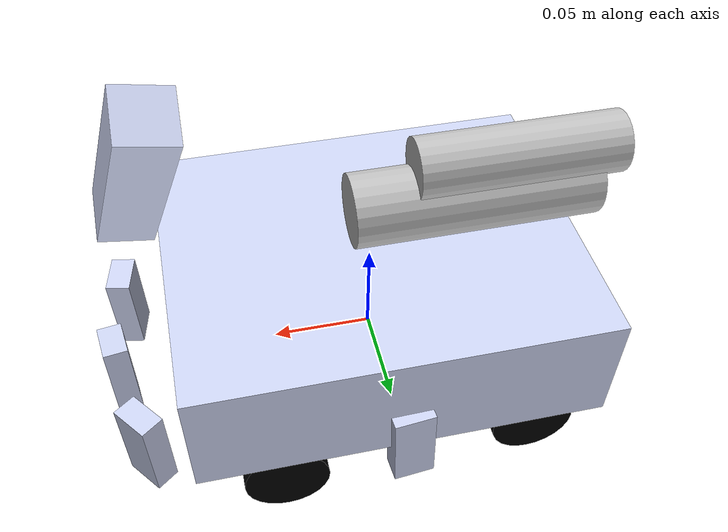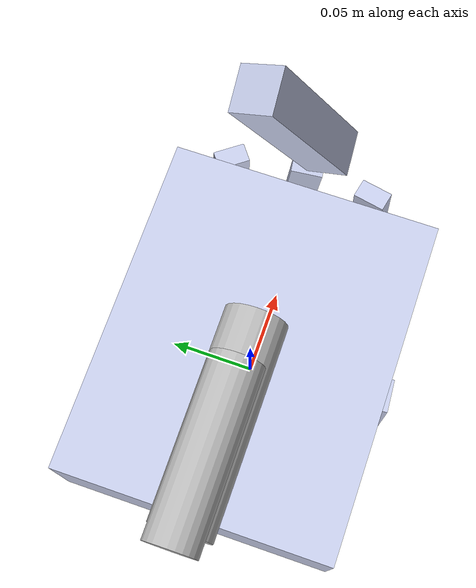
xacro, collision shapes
<?xml version="1.0" encoding="utf-8"?>
<robot name="assembly_of_robot" xmlns:xacro="http://www.ros.org/wiki/xacro">
  <!-- Controllers config path; launch files pass an absolute path override -->
  <xacro:arg name="controllers_yaml" default="$(find simulation_pkg)/config/controllers.yaml"/>

  <!-- ═══════════════════════════════════════════════════════════════════
       MATERIALS
  ══════════════════════════════════════════════════════════════════════ -->
  <material name="light_blue">
    <color rgba="0.792156862745098 0.819607843137255 0.933333333333333 1"/>
  </material>
  <material name="silver">
    <color rgba="0.749019607843137 0.749019607843137 0.749019607843137 1"/>
  </material>
  <material name="gripper_color">
    <color rgba="0.741176470588235 0.733333333333333 0.725490196078431 1"/>
  </material>
  <material name="dark_grey">
    <color rgba="0.2 0.2 0.2 1"/>
  </material>
  <!-- invisible material for wheel links -->
  <material name="invisible">
    <color rgba="0 0 0 0"/>
  </material>

  <!-- ═══════════════════════════════════════════════════════════════════
       BASE
  ══════════════════════════════════════════════════════════════════════ -->

  <link name="base_footprint"/>

  <joint name="base_joint" type="fixed">
    <origin xyz="0 0 0" rpy="0 0 0"/>
    <parent link="base_footprint"/>
    <child  link="base_link"/>
  </joint>

  <link name="base_link">
    <visual>
      <origin xyz="0 0 0" rpy="0 0 0"/>
      <geometry>
        <mesh filename="package://assembly_of_robot/meshes/base_link.STL"/>
      </geometry>
      <material name="light_blue"/>
    </visual>
    <!-- PRIMITIVE collision – avoids Gazebo mesh-load crash -->
    <collision>
      <origin xyz="0 0 0.03" rpy="0 0 0"/>
      <geometry>
        <box size="0.20 0.16 0.06"/>
      </geometry>
    </collision>
    <inertial>
      <origin xyz="0 0 0.03" rpy="0 0 0"/>
      <mass value="0.8"/>
      <inertia ixx="0.002133" ixy="0" ixz="0"
                               iyy="0.003200" iyz="0"
                                              izz="0.004267"/>
    </inertial>
  </link>

  <gazebo reference="base_link">
    <material>Gazebo/Blue</material>
    <mu1>0.5</mu1>
    <mu2>0.5</mu2>
    <self_collide>false</self_collide>
    <maxContacts>1</maxContacts>
  </gazebo>

  <!-- wheel_fl (front-left) -->
  <link name="wheel_fl_link">
    <visual>
      <origin xyz="0 0 0" rpy="0 0 0"/>
      <geometry><sphere radius="0.001"/></geometry>
      <material name="invisible"/>
    </visual>
    <collision>
      <origin xyz="0 0 0" rpy="1.5708 0 0"/>
      <geometry><cylinder length="0.025" radius="0.021"/></geometry>
    </collision>
    <inertial>
      <origin xyz="0 0 0" rpy="0 0 0"/>
      <mass value="0.05"/>
      <inertia ixx="6.25e-06" ixy="0" ixz="0"
                               iyy="6.25e-06" iyz="0"
                                               izz="1.10e-05"/>
    </inertial>
  </link>

  <joint name="wheel_fl_joint" type="continuous">
    <origin xyz="-0.064799 -0.06515 -0.020884" rpy="0 0 0"/>
    <parent link="base_link"/>
    <child  link="wheel_fl_link"/>
    <axis xyz="0 1 0"/>
    <dynamics damping="0.01" friction="0.01"/>
  </joint>

  <gazebo reference="wheel_fl_link">
    <material>Gazebo/DarkGrey</material>
    <mu1>1.5</mu1>
    <mu2>1.5</mu2>
    <kp>500000</kp>
    <kd>10</kd>
    <minDepth>0.001</minDepth>
    <maxVel>0.1</maxVel>
    <self_collide>false</self_collide>
    <maxContacts>1</maxContacts>
  </gazebo>

  <!-- wheel_fr (front-right) -->
  <link name="wheel_fr_link">
    <visual>
      <origin xyz="0 0 0" rpy="0 0 0"/>
      <geometry><sphere radius="0.001"/></geometry>
      <material name="invisible"/>
    </visual>
    <collision>
      <origin xyz="0 0 0" rpy="1.5708 0 0"/>
      <geometry><cylinder length="0.025" radius="0.021"/></geometry>
    </collision>
    <inertial>
      <origin xyz="0 0 0" rpy="0 0 0"/>
      <mass value="0.05"/>
      <inertia ixx="6.25e-06" ixy="0" ixz="0"
                               iyy="6.25e-06" iyz="0"
                                               izz="1.10e-05"/>
    </inertial>
  </link>

  <joint name="wheel_fr_joint" type="continuous">
    <origin xyz="-0.070948 0.056167 -0.020884" rpy="0 0 0"/>
    <parent link="base_link"/>
    <child  link="wheel_fr_link"/>
    <axis xyz="0 1 0"/>
    <dynamics damping="0.01" friction="0.01"/>
  </joint>

  <gazebo reference="wheel_fr_link">
    <material>Gazebo/DarkGrey</material>
    <mu1>1.5</mu1>
    <mu2>1.5</mu2>
    <kp>500000</kp>
    <kd>10</kd>
    <minDepth>0.001</minDepth>
    <maxVel>0.1</maxVel>
    <self_collide>false</self_collide>
    <maxContacts>1</maxContacts>
  </gazebo>

  <!-- wheel_bl (back-left) -->
  <link name="wheel_bl_link">
    <visual>
      <origin xyz="0 0 0" rpy="0 0 0"/>
      <geometry><sphere radius="0.001"/></geometry>
      <material name="invisible"/>
    </visual>
    <collision>
      <origin xyz="0 0 0" rpy="1.5708 0 0"/>
      <geometry><cylinder length="0.025" radius="0.021"/></geometry>
    </collision>
    <inertial>
      <origin xyz="0 0 0" rpy="0 0 0"/>
      <mass value="0.05"/>
      <inertia ixx="6.25e-06" ixy="0" ixz="0"
                               iyy="6.25e-06" iyz="0"
                                               izz="1.10e-05"/>
    </inertial>
  </link>

  <joint name="wheel_bl_joint" type="continuous">
    <origin xyz="0.063537 -0.058645 -0.020884" rpy="0 0 0"/>
    <parent link="base_link"/>
    <child  link="wheel_bl_link"/>
    <axis xyz="0 1 0"/>
    <dynamics damping="0.05" friction="0.05"/>
  </joint>

  <gazebo reference="wheel_bl_link">
    <material>Gazebo/DarkGrey</material>
    <mu1>0.5</mu1>
    <mu2>0.5</mu2>
    <kp>500000</kp>
    <kd>10</kd>
    <minDepth>0.001</minDepth>
    <maxVel>0.1</maxVel>
    <self_collide>false</self_collide>
    <maxContacts>1</maxContacts>
  </gazebo>

  <!-- wheel_br (back-right) -->
  <link name="wheel_br_link">
    <visual>
      <origin xyz="0 0 0" rpy="0 0 0"/>
      <geometry><sphere radius="0.001"/></geometry>
      <material name="invisible"/>
    </visual>
    <collision>
      <origin xyz="0 0 0" rpy="1.5708 0 0"/>
      <geometry><cylinder length="0.025" radius="0.021"/></geometry>
    </collision>
    <inertial>
      <origin xyz="0 0 0" rpy="0 0 0"/>
      <mass value="0.05"/>
      <inertia ixx="6.25e-06" ixy="0" ixz="0"
                               iyy="6.25e-06" iyz="0"
                                               izz="1.10e-05"/>
    </inertial>
  </link>

  <joint name="wheel_br_joint" type="continuous">
    <origin xyz="0.057387 0.062672 -0.020884" rpy="0 0 0"/>
    <parent link="base_link"/>
    <child  link="wheel_br_link"/>
    <axis xyz="0 1 0"/>
    <dynamics damping="0.05" friction="0.05"/>
  </joint>

  <gazebo reference="wheel_br_link">
    <material>Gazebo/DarkGrey</material>
    <mu1>0.5</mu1>
    <mu2>0.5</mu2>
    <kp>500000</kp>
    <kd>10</kd>
    <minDepth>0.001</minDepth>
    <maxVel>0.1</maxVel>
    <self_collide>false</self_collide>
    <maxContacts>1</maxContacts>
  </gazebo>

  <link name="ultra_lf_link">
    <inertial>
      <origin xyz="0.000392502520046079 0.00999778155024024 0.00386934718745924" rpy="0 0 0"/>
      <mass value="0.00627539687489747"/>
      <inertia ixx="1.78976908086646E-07" ixy="7.30391819666835E-09" ixz="3.96814441299485E-10"
               iyy="3.90047381838217E-07" iyz="1.93385096181571E-09" izz="4.6747919767257E-07"/>
    </inertial>
    <visual>
      <origin xyz="0 0 0" rpy="0 0 0"/>
      <geometry><mesh filename="package://assembly_of_robot/meshes/ultra_lf_link.STL"/></geometry>
      <material name="light_blue"/>
    </visual>
    <collision>
      <origin xyz="0 0 0.004" rpy="0 0 0"/>
      <geometry><box size="0.020 0.045 0.012"/></geometry>
    </collision>
  </link>
  <joint name="ultra_lf_joint" type="fixed">
    <origin xyz="-0.00226580751498728 0.0750361820477629 0.00200000000000006"
            rpy="1.5707963267949 -0.034893228197693 -3.06809938651869"/>
    <parent link="base_link"/>
    <child  link="ultra_lf_link"/>
    <axis xyz="0.994109411682675 -0.0902133376226379 0.0600452863671194"/>
  </joint>

  <link name="ultra_cl_link">
    <inertial>
      <origin xyz="0.000222406075916948 0.010003020783912 0.00386934006852402" rpy="0 0 0"/>
      <mass value="0.00627540556306311"/>
      <inertia ixx="1.78789966908303E-07" ixy="3.71045324302472E-09" ixz="3.63869202998041E-10"
               iyy="3.90234791362463E-07" iyz="1.94031977317123E-09" izz="4.67479665984999E-07"/>
    </inertial>
    <visual>
      <origin xyz="0 0 0" rpy="0 0 0"/>
      <geometry><mesh filename="package://assembly_of_robot/meshes/ultra_cl_link.STL"/></geometry>
      <material name="light_blue"/>
    </visual>
    <collision>
      <origin xyz="0 0 0.004" rpy="0 0 0"/>
      <geometry><box size="0.020 0.045 0.012"/></geometry>
    </collision>
  </link>
  <joint name="ultra_cl_joint" type="fixed">
    <origin xyz="0.117331768199602 0.0520604546695451 0.00200000000000003"
            rpy="1.5707963267949 -0.0178847798605488 2.22332530130247"/>
    <parent link="base_link"/>
    <child  link="ultra_cl_link"/>
    <axis xyz="0 0 0"/>
  </joint>

  <link name="ultra_center_link">
    <inertial>
      <origin xyz="0.000903651099340264 0.00996459690264215 0.00386934479063039" rpy="0 0 0"/>
      <mass value="0.00627539932879679"/>
      <inertia ixx="1.80276559726899E-07" ixy="1.80536125704803E-08" ixz="4.95265966528288E-10"
               iyy="3.88747971268318E-07" iyz="1.91101944350272E-09" izz="4.67479439045531E-07"/>
    </inertial>
    <visual>
      <origin xyz="0 0 0" rpy="0 0 0"/>
      <geometry><mesh filename="package://assembly_of_robot/meshes/ultra_center_link.STL"/></geometry>
      <material name="light_blue"/>
    </visual>
    <collision>
      <origin xyz="0 0 0.004" rpy="0 0 0"/>
      <geometry><box size="0.020 0.045 0.012"/></geometry>
    </collision>
  </link>
  <joint name="ultra_center_joint" type="fixed">
    <origin xyz="0.126350089728397 0.00784554805723164 0.00200000000000003"
            rpy="1.5707963267949 -0.0860932764661557 1.71543729999604"/>
    <parent link="base_link"/>
    <child  link="ultra_center_link"/>
    <axis xyz="0 0 0"/>
  </joint>

  <link name="ultra_cr_link">
    <inertial>
      <origin xyz="0.000399191916967911 -0.00974732286991095 0.00336934153326418" rpy="0 0 0"/>
      <mass value="0.00627540372500677"/>
      <inertia ixx="1.79166991919321E-07" ixy="-9.66225182141075E-09" ixz="-2.40452170936952E-10"
               iyy="3.89857689023337E-07" iyz="-1.95944567319489E-09" izz="4.67479586656258E-07"/>
    </inertial>
    <visual>
      <origin xyz="0 0 0" rpy="0 0 0"/>
      <geometry><mesh filename="package://assembly_of_robot/meshes/ultra_cr_link.STL"/></geometry>
      <material name="light_blue"/>
    </visual>
    <collision>
      <origin xyz="0 0 0.004" rpy="0 0 0"/>
      <geometry><box size="0.020 0.045 0.012"/></geometry>
    </collision>
  </link>
  <joint name="ultra_cr_joint" type="fixed">
    <origin xyz="0.120364794822 -0.0378424458058604 0.00225000000000003"
            rpy="-1.5707963267949 -0.0453879801240789 -1.78287911613685"/>
    <parent link="base_link"/>
    <child  link="ultra_cr_link"/>
    <axis xyz="0 0 0"/>
  </joint>

  <link name="ultra_right_side_link">
    <inertial>
      <origin xyz="-0.000922742788134978 -0.0100156939621976 0.0038693426395956" rpy="0 0 0"/>
      <mass value="0.00627540290688136"/>
      <inertia ixx="1.78749869264092E-07" ixy="-2.30610000214141E-09" ixz="-3.08541334677673E-10"
               iyy="3.90274735150182E-07" iyz="-1.94986850656983E-09" izz="4.67479505514093E-07"/>
    </inertial>
    <visual>
      <origin xyz="0 0 0" rpy="0 0 0"/>
      <geometry><mesh filename="package://assembly_of_robot/meshes/ultra_right_side_link.STL"/></geometry>
      <material name="light_blue"/>
    </visual>
    <collision>
      <origin xyz="0 0 0.004" rpy="0 0 0"/>
      <geometry><box size="0.020 0.045 0.012"/></geometry>
    </collision>
  </link>
  <joint name="ultra_right_side_joint" type="fixed">
    <origin xyz="0.00472675427660008 -0.0748549926956864 0.00200000000000003"
            rpy="-1.5707963267949 -0.0105564142397783 -3.06809938651869"/>
    <parent link="base_link"/>
    <child  link="ultra_right_side_link"/>
    <axis xyz="0.999873275135185 -0.0153119105873406 0.00322673218666552"/>
  </joint>

  <!-- Gazebo ultrasonic ray sensor plugins -->
  <gazebo reference="ultra_lf_link">
    <self_collide>false</self_collide>
    <sensor type="ray" name="ultra_lf_sensor">
      <pose>0 0 0 0 0 0</pose><visualize>false</visualize><update_rate>10</update_rate>
      <ray><scan><horizontal><samples>1</samples><resolution>1</resolution>
        <min_angle>-0.1</min_angle><max_angle>0.1</max_angle></horizontal></scan>
        <range><min>0.02</min><max>4.0</max><resolution>0.01</resolution></range></ray>
      <plugin name="ultra_lf_plugin" filename="libgazebo_ros_ray_sensor.so">
        <ros><remapping>~/out:=/ultrasonic/front_left</remapping></ros>
        <output_type>sensor_msgs/Range</output_type>
        <frame_name>ultra_lf_link</frame_name>
      </plugin>
    </sensor>
  </gazebo>
  <gazebo reference="ultra_cl_link">
    <self_collide>false</self_collide>
    <sensor type="ray" name="ultra_cl_sensor">
      <pose>0 0 0 0 0 0</pose><visualize>false</visualize><update_rate>10</update_rate>
      <ray><scan><horizontal><samples>1</samples><resolution>1</resolution>
        <min_angle>-0.1</min_angle><max_angle>0.1</max_angle></horizontal></scan>
        <range><min>0.02</min><max>4.0</max><resolution>0.01</resolution></range></ray>
      <plugin name="ultra_cl_plugin" filename="libgazebo_ros_ray_sensor.so">
        <ros><remapping>~/out:=/ultrasonic/center_left</remapping></ros>
        <output_type>sensor_msgs/Range</output_type>
        <frame_name>ultra_cl_link</frame_name>
      </plugin>
    </sensor>
  </gazebo>
  <gazebo reference="ultra_center_link">
    <self_collide>false</self_collide>
    <sensor type="ray" name="ultra_center_sensor">
      <pose>0 0 0 0 0 0</pose><visualize>false</visualize><update_rate>10</update_rate>
      <ray><scan><horizontal><samples>1</samples><resolution>1</resolution>
        <min_angle>-0.1</min_angle><max_angle>0.1</max_angle></horizontal></scan>
        <range><min>0.02</min><max>4.0</max><resolution>0.01</resolution></range></ray>
      <plugin name="ultra_center_plugin" filename="libgazebo_ros_ray_sensor.so">
        <ros><remapping>~/out:=/ultrasonic/front_center</remapping></ros>
        <output_type>sensor_msgs/Range</output_type>
        <frame_name>ultra_center_link</frame_name>
      </plugin>
    </sensor>
  </gazebo>
  <gazebo reference="ultra_cr_link">
    <self_collide>false</self_collide>
    <sensor type="ray" name="ultra_cr_sensor">
      <pose>0 0 0 0 0 0</pose><visualize>false</visualize><update_rate>10</update_rate>
      <ray><scan><horizontal><samples>1</samples><resolution>1</resolution>
        <min_angle>-0.1</min_angle><max_angle>0.1</max_angle></horizontal></scan>
        <range><min>0.02</min><max>4.0</max><resolution>0.01</resolution></range></ray>
      <plugin name="ultra_cr_plugin" filename="libgazebo_ros_ray_sensor.so">
        <ros><remapping>~/out:=/ultrasonic/center_right</remapping></ros>
        <output_type>sensor_msgs/Range</output_type>
        <frame_name>ultra_cr_link</frame_name>
      </plugin>
    </sensor>
  </gazebo>
  <gazebo reference="ultra_right_side_link">
    <self_collide>false</self_collide>
    <sensor type="ray" name="ultra_right_side_sensor">
      <pose>0 0 0 0 0 0</pose><visualize>false</visualize><update_rate>10</update_rate>
      <ray><scan><horizontal><samples>1</samples><resolution>1</resolution>
        <min_angle>-0.1</min_angle><max_angle>0.1</max_angle></horizontal></scan>
        <range><min>0.02</min><max>4.0</max><resolution>0.01</resolution></range></ray>
      <plugin name="ultra_right_side_plugin" filename="libgazebo_ros_ray_sensor.so">
        <ros><remapping>~/out:=/ultrasonic/right_side</remapping></ros>
        <output_type>sensor_msgs/Range</output_type>
        <frame_name>ultra_right_side_link</frame_name>
      </plugin>
    </sensor>
  </gazebo>

  <link name="camera_link">
    <inertial>
      <origin xyz="0.113101613282004 0.280706583049789 -0.844987323319077" rpy="0 0 0"/>
      <mass value="0.01"/>
      <inertia ixx="1e-06" ixy="0" ixz="0" iyy="1e-06" iyz="0" izz="1e-06"/>
    </inertial>
    <visual>
      <origin xyz="0 0 0" rpy="0 0 0"/>
      <geometry><mesh filename="package://assembly_of_robot/meshes/camera_link.STL"/></geometry>
      <material name="light_blue"/>
    </visual>
    <collision>
      <origin xyz="0 0 0" rpy="0 0 0"/>
      <geometry><box size="0.025 0.090 0.025"/></geometry>
    </collision>
  </link>
  <joint name="camera_joint" type="fixed">
    <origin xyz="0.101824132879338 0.00950646835199812 0.128659999721809"
            rpy="1.32812932523048 0.443573327716237 1.53844767065916"/>
    <parent link="base_link"/>
    <child  link="camera_link"/>
    <axis xyz="-0.77008155834134 0.594774051730041 0.230693936398864"/>
  </joint>

  <link name="camera_optical_link"/>
  <joint name="camera_optical_joint" type="fixed">
    <origin xyz="0 0 0" rpy="-1.5707963267949 0 -1.5707963267949"/>
    <parent link="camera_link"/>
    <child  link="camera_optical_link"/>
  </joint>

  <gazebo reference="camera_link">
    <self_collide>false</self_collide>
    <sensor type="camera" name="rgb_camera">
      <update_rate>30.0</update_rate>
      <visualize>false</visualize>
      <camera name="camera">
        <horizontal_fov>1.3962634</horizontal_fov>
        <image><width>640</width><height>480</height><format>R8G8B8</format></image>
        <clip><near>0.02</near><far>300</far></clip>
      </camera>
      <plugin name="camera_plugin" filename="libgazebo_ros_camera.so">
        <ros>
          <remapping>image_raw:=/camera/image_raw</remapping>
          <remapping>camera_info:=/camera/camera_info</remapping>
        </ros>
        <camera_name>camera</camera_name>
        <frame_name>camera_optical_link</frame_name>
        <hack_baseline>0.07</hack_baseline>
      </plugin>
    </sensor>
  </gazebo>

  <link name="arm1_link">
    <inertial>
      <origin xyz="-0.0774407866713394 -0.00510260600289045 0.105779455605111" rpy="0 0 0"/>
      <mass value="0.0555771996526445"/>
      <inertia ixx="6.21594066214897E-06" ixy="-3.5063653156084E-07" ixz="-2.71141858998155E-07"
               iyy="1.01641651598326E-05" iyz="-2.39497009232085E-08" izz="9.59540801924735E-06"/>
    </inertial>
    <visual>
      <origin xyz="0 0 0" rpy="0 0 0"/>
      <geometry><mesh filename="package://assembly_of_robot/meshes/arm1_link.STL"/></geometry>
      <material name="silver"/>
    </visual>
    <collision>
      <origin xyz="-0.05 0 0.08" rpy="0 1.5708 0"/>
      <geometry><cylinder length="0.12" radius="0.018"/></geometry>
    </collision>
  </link>
  <joint name="arm1_joint" type="revolute">
    <origin xyz="0 0 0" rpy="0 0 0"/>
    <parent link="base_link"/>
    <child  link="arm1_link"/>
    <axis xyz="0 0 -1"/>
    <limit lower="-1.5" upper="1.5" effort="10.0" velocity="1.0"/>
    <dynamics damping="0.1" friction="0.05"/>
  </joint>

  <link name="arm2_link">
    <inertial>
      <origin xyz="-0.125168636410049 0.00321053283421635 0.165883121514536" rpy="0 0 0"/>
      <mass value="0.025421450970038"/>
      <inertia ixx="4.93539788987539E-06" ixy="-1.69138231922324E-07" ixz="5.92515859666424E-08"
               iyy="6.92707179301842E-06" iyz="-2.355541751498E-08" izz="2.78066800894729E-06"/>
    </inertial>
    <visual>
      <origin xyz="0 0 0" rpy="0 0 0"/>
      <geometry><mesh filename="package://assembly_of_robot/meshes/arm2_link.STL"/></geometry>
      <material name="silver"/>
    </visual>
    <collision>
      <origin xyz="-0.07 0 0.1" rpy="0 1.5708 0"/>
      <geometry><cylinder length="0.10" radius="0.015"/></geometry>
    </collision>
  </link>
  <joint name="arm2_joint" type="revolute">
    <origin xyz="0 0 0" rpy="0 0 0"/>
    <parent link="arm1_link"/>
    <child  link="arm2_link"/>
    <axis xyz="0.087986 -0.99612 0"/>
    <limit lower="-1.5" upper="1.5" effort="10.0" velocity="1.0"/>
    <dynamics damping="0.1" friction="0.05"/>
  </joint>

  <link name="arm3_link">
    <inertial>
      <origin xyz="-0.131612459247667 -0.015818441156768 0.158136097302883" rpy="0 0 0"/>
      <mass value="0.0231763537794877"/>
      <inertia ixx="4.44764720548677E-06" ixy="-2.52370171791878E-07" ixz="-7.36137603387454E-07"
               iyy="7.28121465716448E-06" iyz="-6.50979103179039E-08" izz="3.163472332731E-06"/>
    </inertial>
    <visual>
      <origin xyz="0 0 0" rpy="0 0 0"/>
      <geometry><mesh filename="package://assembly_of_robot/meshes/arm3_link.STL"/></geometry>
      <material name="silver"/>
    </visual>
    <collision>
      <origin xyz="-0.07 0 0.1" rpy="0 1.5708 0"/>
      <geometry><cylinder length="0.10" radius="0.015"/></geometry>
    </collision>
  </link>
  <joint name="arm3_joint" type="revolute">
    <origin xyz="0 0 0" rpy="0 0 0"/>
    <parent link="arm1_link"/>
    <child  link="arm3_link"/>
    <axis xyz="-0.0879860150931316 0.996121710007382 0"/>
    <limit lower="-1.5" upper="1.5" effort="10.0" velocity="1.0"/>
    <dynamics damping="0.1" friction="0.05"/>
  </joint>

  <link name="gripper_link">
    <inertial>
      <origin xyz="-0.186719938225505 -0.0101933243873208 0.154829436742073" rpy="0 0 0"/>
      <mass value="0.0134689809182682"/>
      <inertia ixx="6.42660595212128E-07" ixy="-3.68224348843171E-08" ixz="1.34491448246805E-07"
               iyy="1.09353163583225E-06" iyz="9.4548029175504E-09" izz="7.73525430068985E-07"/>
    </inertial>
    <visual>
      <origin xyz="0 0 0" rpy="0 0 0"/>
      <geometry><mesh filename="package://assembly_of_robot/meshes/gripper_link.STL"/></geometry>
      <material name="gripper_color"/>
    </visual>
    <collision>
      <origin xyz="0 0 0" rpy="0 0 0"/>
      <geometry><box size="0.05 0.04 0.03"/></geometry>
    </collision>
  </link>
  <joint name="gripper_joint" type="revolute">
    <origin xyz="0 0 0" rpy="0 0 0"/>
    <parent link="arm2_link"/>
    <child  link="gripper_link"/>
    <axis xyz="-0.61534 -0.054353 -0.78638"/>
    <limit lower="-1.5" upper="1.5" effort="5.0" velocity="1.0"/>
    <dynamics damping="0.05" friction="0.02"/>
  </joint>

  <gazebo reference="arm1_link">
    <material>Gazebo/Grey</material>
    <self_collide>false</self_collide>
  </gazebo>
  <gazebo reference="arm2_link">
    <material>Gazebo/Grey</material>
    <self_collide>false</self_collide>
  </gazebo>
  <gazebo reference="arm3_link">
    <material>Gazebo/Grey</material>
    <self_collide>false</self_collide>
  </gazebo>
  <gazebo reference="gripper_link">
    <material>Gazebo/DarkGrey</material>
    <self_collide>false</self_collide>
  </gazebo>

  <!-- ═══════════════════════════════════════════════════════════════════
       IMU LINK  (added for Nav2 / EKF fusion)
  ══════════════════════════════════════════════════════════════════════ -->
  <link name="imu_link">
    <inertial>
      <origin xyz="0 0 0" rpy="0 0 0"/>
      <mass value="0.001"/>
      <inertia ixx="1e-08" ixy="0" ixz="0" iyy="1e-08" iyz="0" izz="1e-08"/>
    </inertial>
    <visual>
      <origin xyz="0 0 0" rpy="0 0 0"/>
      <geometry><box size="0.01 0.01 0.005"/></geometry>
      <material name="dark_grey"/>
    </visual>
    <collision>
      <origin xyz="0 0 0" rpy="0 0 0"/>
      <geometry><box size="0.01 0.01 0.005"/></geometry>
    </collision>
  </link>
  <joint name="imu_joint" type="fixed">
    <origin xyz="0 0 0.03" rpy="0 0 0"/>
    <parent link="base_link"/>
    <child  link="imu_link"/>
  </joint>

  <gazebo reference="imu_link">
    <self_collide>false</self_collide>
    <sensor name="imu_sensor" type="imu">
      <always_on>true</always_on>
      <update_rate>100</update_rate>
      <visualize>false</visualize>
      <plugin name="imu_plugin" filename="libgazebo_ros_imu_sensor.so">
        <ros>
          <remapping>~/out:=/imu/data</remapping>
        </ros>
        <initial_orientation_as_reference>false</initial_orientation_as_reference>
        <frame_name>imu_link</frame_name>
      </plugin>
    </sensor>
  </gazebo>

  <gazebo>
    <plugin name="diff_drive_plugin" filename="libgazebo_ros_diff_drive.so">
      <ros>
        <remapping>cmd_vel:=/cmd_vel</remapping>
        <remapping>odom:=/odom</remapping>
      </ros>
      <left_joint>wheel_fl_joint</left_joint>
      <right_joint>wheel_fr_joint</right_joint>
      <wheel_separation>0.1213</wheel_separation>
      <wheel_diameter>0.042</wheel_diameter>
      <max_wheel_torque>5.0</max_wheel_torque>
      <max_wheel_acceleration>1.0</max_wheel_acceleration>
      <publish_odom>true</publish_odom>
      <publish_odom_tf>true</publish_odom_tf>
      <publish_wheel_tf>false</publish_wheel_tf>
      <odometry_frame>odom</odometry_frame>
      <robot_base_frame>base_footprint</robot_base_frame>
    </plugin>
  </gazebo>

  <!-- ═══════════════════════════════════════════════════════════════════
       ROS2 CONTROL
  ══════════════════════════════════════════════════════════════════════ -->
  <ros2_control name="arm_control" type="system">
    <hardware>
      <plugin>gazebo_ros2_control/GazeboSystem</plugin>
    </hardware>
    <joint name="arm1_joint">
      <command_interface name="position"/>
      <state_interface   name="position"/>
      <state_interface   name="velocity"/>
    </joint>
    <joint name="arm2_joint">
      <command_interface name="position"/>
      <state_interface   name="position"/>
      <state_interface   name="velocity"/>
    </joint>
    <joint name="arm3_joint">
      <command_interface name="position"/>
      <state_interface   name="position"/>
      <state_interface   name="velocity"/>
    </joint>
    <joint name="gripper_joint">
      <command_interface name="position"/>
      <state_interface   name="position"/>
      <state_interface   name="velocity"/>
    </joint>
  </ros2_control>

  <gazebo>
    <plugin name="gazebo_ros2_control" filename="libgazebo_ros2_control.so">
      <parameters>$(arg controllers_yaml)</parameters>
    </plugin>
  </gazebo>

</robot>
